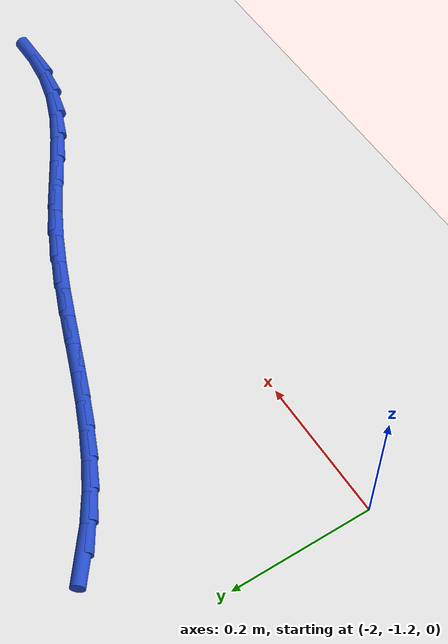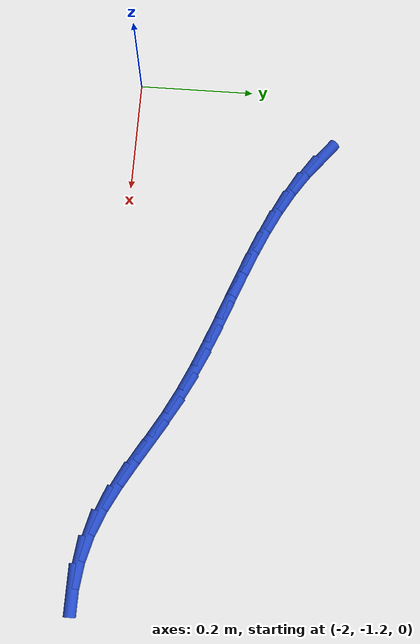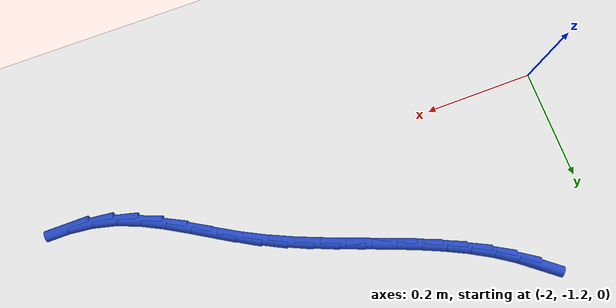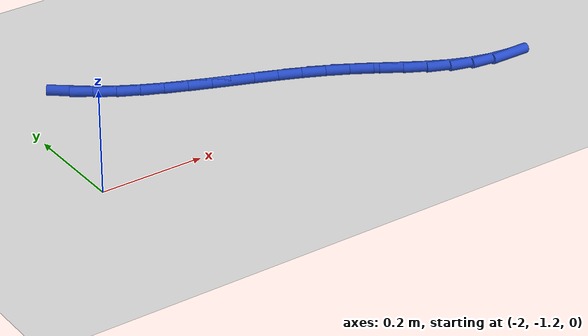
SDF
<sdf version="1.6">
 <world name="default">
  <model name="ground_plane">
   <static>1</static>
   <link name="link">
    <collision name="collision">
     <geometry><plane><normal>0 0 1</normal><size>100 100</size></plane></geometry>
     <surface><friction><ode><mu>100</mu><mu2>50</mu2></ode></friction></surface>
    </collision>
    <visual name="visual">
     <cast_shadows>0</cast_shadows>
     <geometry><plane><normal>0 0 1</normal><size>100 100</size></plane></geometry>
     <material>
      <script><uri>file://media/materials/scripts/gazebo.material</uri><name>Gazebo/WhiteGlow</name></script>
     </material>
    </visual>
   </link>
  </model>
  <model name="line">
   <link name="link_101">
    <pose>-1.8744458523036334 -0.8732906187374672 0.01 0 1.57 -0.667428019718976</pose>
    <collision name="collision">
     <geometry><cylinder><radius>0.01</radius><length>0.08</length></cylinder></geometry>
    </collision>
    <visual name="visual">
     <material>
      <script><name>Gazebo/Blue</name><uri>file://media/materials/scripts/gazebo.material</uri></script>
     </material>
     <geometry><cylinder><radius>0.01</radius><length>0.08</length></cylinder></geometry>
    </visual>
   </link>
   <link name="link_102">
    <pose>-1.841144643778166 -0.8995345136663795 0.01 0 1.57 -0.5839360243365451</pose>
    <collision name="collision">
     <geometry><cylinder><radius>0.01</radius><length>0.08</length></cylinder></geometry>
    </collision>
    <visual name="visual">
     <material>
      <script><name>Gazebo/Blue</name><uri>file://media/materials/scripts/gazebo.material</uri></script>
     </material>
     <geometry><cylinder><radius>0.01</radius><length>0.08</length></cylinder></geometry>
    </visual>
   </link>
   <link name="link_103">
    <pose>-1.8057116223277814 -0.9229489578394127 0.01 0 1.57 -0.5124012518794243</pose>
    <collision name="collision">
     <geometry><cylinder><radius>0.01</radius><length>0.08</length></cylinder></geometry>
    </collision>
    <visual name="visual">
     <material>
      <script><name>Gazebo/Blue</name><uri>file://media/materials/scripts/gazebo.material</uri></script>
     </material>
     <geometry><cylinder><radius>0.01</radius><length>0.08</length></cylinder></geometry>
    </visual>
   </link>
   <link name="link_104">
    <pose>-1.7684006156431362 -0.9439369782632712 0.01 0 1.57 -0.45547264716363867</pose>
    <collision name="collision">
     <geometry><cylinder><radius>0.01</radius><length>0.08</length></cylinder></geometry>
    </collision>
    <visual name="visual">
     <material>
      <script><name>Gazebo/Blue</name><uri>file://media/materials/scripts/gazebo.material</uri></script>
     </material>
     <geometry><cylinder><radius>0.01</radius><length>0.08</length></cylinder></geometry>
    </visual>
   </link>
   <link name="link_105">
    <pose>-1.7295223188755482 -0.9629804494153292 0.01 0 1.57 -0.41286586363801</pose>
    <collision name="collision">
     <geometry><cylinder><radius>0.01</radius><length>0.08</length></cylinder></geometry>
    </collision>
    <visual name="visual">
     <material>
      <script><name>Gazebo/Blue</name><uri>file://media/materials/scripts/gazebo.material</uri></script>
     </material>
     <geometry><cylinder><radius>0.01</radius><length>0.08</length></cylinder></geometry>
    </visual>
   </link>
   <link name="link_106">
    <pose>-1.6893874271763352 -0.9805612457729606 0.01 0 1.57 -0.3840201236168693</pose>
    <collision name="collision">
     <geometry><cylinder><radius>0.01</radius><length>0.08</length></cylinder></geometry>
    </collision>
    <visual name="visual">
     <material>
      <script><name>Gazebo/Blue</name><uri>file://media/materials/scripts/gazebo.material</uri></script>
     </material>
     <geometry><cylinder><radius>0.01</radius><length>0.08</length></cylinder></geometry>
    </visual>
   </link>
   <link name="link_107">
    <pose>-1.6483066356968155 -0.9971612418135374 0.01 0 1.57 -0.3683522475240382</pose>
    <collision name="collision">
     <geometry><cylinder><radius>0.01</radius><length>0.08</length></cylinder></geometry>
    </collision>
    <visual name="visual">
     <material>
      <script><name>Gazebo/Blue</name><uri>file://media/materials/scripts/gazebo.material</uri></script>
     </material>
     <geometry><cylinder><radius>0.01</radius><length>0.08</length></cylinder></geometry>
    </visual>
   </link>
   <link name="link_108">
    <pose>-1.606590639588306 -1.0132623120144335 0.01 0 1.57 -0.3654028987015425</pose>
    <collision name="collision">
     <geometry><cylinder><radius>0.01</radius><length>0.08</length></cylinder></geometry>
    </collision>
    <visual name="visual">
     <material>
      <script><name>Gazebo/Blue</name><uri>file://media/materials/scripts/gazebo.material</uri></script>
     </material>
     <geometry><cylinder><radius>0.01</radius><length>0.08</length></cylinder></geometry>
    </visual>
   </link>
   <link name="link_109">
    <pose>-1.5645501340021257 -1.029346330853023 0.01 0 1.57 -0.37490001733659295</pose>
    <collision name="collision">
     <geometry><cylinder><radius>0.01</radius><length>0.08</length></cylinder></geometry>
    </collision>
    <visual name="visual">
     <material>
      <script><name>Gazebo/Blue</name><uri>file://media/materials/scripts/gazebo.material</uri></script>
     </material>
     <geometry><cylinder><radius>0.01</radius><length>0.08</length></cylinder></geometry>
    </visual>
   </link>
   <link name="link_110">
    <pose>-1.522495814089591 -1.0458951728066788 0.01 0 1.57 -0.3967607810663674</pose>
    <collision name="collision">
     <geometry><cylinder><radius>0.01</radius><length>0.08</length></cylinder></geometry>
    </collision>
    <visual name="visual">
     <material>
      <script><name>Gazebo/Blue</name><uri>file://media/materials/scripts/gazebo.material</uri></script>
     </material>
     <geometry><cylinder><radius>0.01</radius><length>0.08</length></cylinder></geometry>
    </visual>
   </link>
   <link name="link_111">
    <pose>-1.4807383750020198 -1.0633907123527748 0.01 0 1.57 -0.43104195163689507</pose>
    <collision name="collision">
     <geometry><cylinder><radius>0.01</radius><length>0.08</length></cylinder></geometry>
    </collision>
    <visual name="visual">
     <material>
      <script><name>Gazebo/Blue</name><uri>file://media/materials/scripts/gazebo.material</uri></script>
     </material>
     <geometry><cylinder><radius>0.01</radius><length>0.08</length></cylinder></geometry>
    </visual>
   </link>
   <link name="link_112">
    <pose>-1.4395885118907308 -1.0823148239686835 0.01 0 1.57 -0.4778274565578114</pose>
    <collision name="collision">
     <geometry><cylinder><radius>0.01</radius><length>0.08</length></cylinder></geometry>
    </collision>
    <visual name="visual">
     <material>
      <script><name>Gazebo/Blue</name><uri>file://media/materials/scripts/gazebo.material</uri></script>
     </material>
     <geometry><cylinder><radius>0.01</radius><length>0.08</length></cylinder></geometry>
    </visual>
   </link>
   <link name="link_113">
    <pose>-1.399356744577796 -1.1031489484462136 0.01 0 1.57 -0.5262157041946385</pose>
    <collision name="collision">
     <geometry><cylinder><radius>0.01</radius><length>0.08</length></cylinder></geometry>
    </collision>
    <visual name="visual">
     <material>
      <script><name>Gazebo/Blue</name><uri>file://media/materials/scripts/gazebo.material</uri></script>
     </material>
     <geometry><cylinder><radius>0.01</radius><length>0.08</length></cylinder></geometry>
    </visual>
   </link>
   <link name="link_114">
    <pose>-1.3601667144324676 -1.1259122734767275 0.01 0 1.57 -0.5448206947237784</pose>
    <collision name="collision">
     <geometry><cylinder><radius>0.01</radius><length>0.08</length></cylinder></geometry>
    </collision>
    <visual name="visual">
     <material>
      <script><name>Gazebo/Blue</name><uri>file://media/materials/scripts/gazebo.material</uri></script>
     </material>
     <geometry><cylinder><radius>0.01</radius><length>0.08</length></cylinder></geometry>
    </visual>
   </link>
   <link name="link_115">
    <pose>-1.3216001926199876 -1.149283643988336 0.01 0 1.57 -0.5277320605599612</pose>
    <collision name="collision">
     <geometry><cylinder><radius>0.01</radius><length>0.08</length></cylinder></geometry>
    </collision>
    <visual name="visual">
     <material>
      <script><name>Gazebo/Blue</name><uri>file://media/materials/scripts/gazebo.material</uri></script>
     </material>
     <geometry><cylinder><radius>0.01</radius><length>0.08</length></cylinder></geometry>
    </visual>
   </link>
   <link name="link_116">
    <pose>-1.2831412970247151 -1.1717003546866624 0.01 0 1.57 -0.47318849408986297</pose>
    <collision name="collision">
     <geometry><cylinder><radius>0.01</radius><length>0.08</length></cylinder></geometry>
    </collision>
    <visual name="visual">
     <material>
      <script><name>Gazebo/Blue</name><uri>file://media/materials/scripts/gazebo.material</uri></script>
     </material>
     <geometry><cylinder><radius>0.01</radius><length>0.08</length></cylinder></geometry>
    </visual>
   </link>
   <link name="link_117">
    <pose>-1.2442741455310111 -1.1915997002773295 0.01 0 1.57 -0.3783979083411208</pose>
    <collision name="collision">
     <geometry><cylinder><radius>0.01</radius><length>0.08</length></cylinder></geometry>
    </collision>
    <visual name="visual">
     <material>
      <script><name>Gazebo/Blue</name><uri>file://media/materials/scripts/gazebo.material</uri></script>
     </material>
     <geometry><cylinder><radius>0.01</radius><length>0.08</length></cylinder></geometry>
    </visual>
   </link>
   <link name="link_118">
    <pose>-1.2044828560232332 -1.2074189754659594 0.01 0 1.57 -0.24812407954393723</pose>
    <collision name="collision">
     <geometry><cylinder><radius>0.01</radius><length>0.08</length></cylinder></geometry>
    </collision>
    <visual name="visual">
     <material>
      <script><name>Gazebo/Blue</name><uri>file://media/materials/scripts/gazebo.material</uri></script>
     </material>
     <geometry><cylinder><radius>0.01</radius><length>0.08</length></cylinder></geometry>
    </visual>
   </link>
   <link name="link_119">
    <pose>-1.163348852459915 -1.217840055039309 0.01 0 1.57 -0.11812987228240039</pose>
    <collision name="collision">
     <geometry><cylinder><radius>0.01</radius><length>0.08</length></cylinder></geometry>
    </collision>
    <visual name="visual">
     <material>
      <script><name>Gazebo/Blue</name><uri>file://media/materials/scripts/gazebo.material</uri></script>
     </material>
     <geometry><cylinder><radius>0.01</radius><length>0.08</length></cylinder></geometry>
    </visual>
   </link>
   <link name="link_120">
    <pose>-1.1209801760672282 -1.2228684731254393 0.01 0 1.57 -0.002008734947268578</pose>
    <collision name="collision">
     <geometry><cylinder><radius>0.01</radius><length>0.08</length></cylinder></geometry>
    </collision>
    <visual name="visual">
     <material>
      <script><name>Gazebo/Blue</name><uri>file://media/materials/scripts/gazebo.material</uri></script>
     </material>
     <geometry><cylinder><radius>0.01</radius><length>0.08</length></cylinder></geometry>
    </visual>
   </link>
  </model>
 </world>
</sdf>
